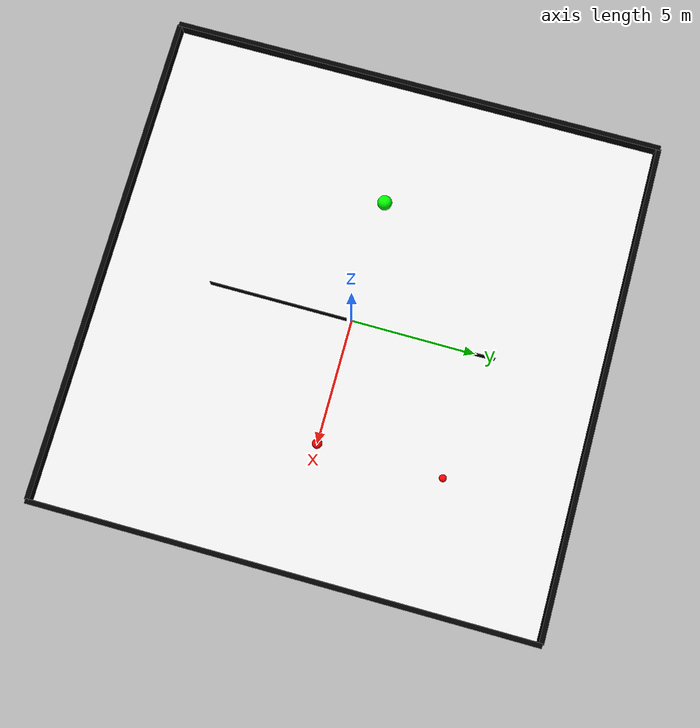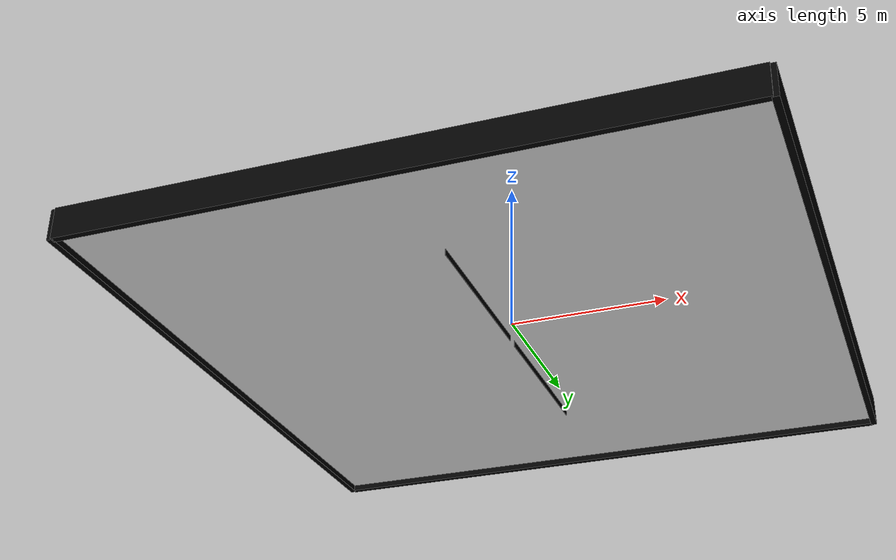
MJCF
<mujoco>
    <option gravity="0 0 0" timestep="0.01"/>
<default>
    <geom rgba="0 0 0 1"/>
</default>
    <worldbody>
 	<light diffuse=".2 .2 .2" pos="0 0 20" dir="0 0 -1" mode="track"/>
	<body>
	  <geom name='floor' pos='0 0 -0.4' size='10 10 .1' mass="10000" type='box' condim='3' rgba=".9 .9 .9 1"/>
		<camera name="center" mode="fixed" pos="0 0 30" />
	</body>
	<body>
	  <geom name='wall1' pos='-10.05 0 -0.2' size='.1 10.1 .5' mass="10000" type='box' condim='3'/>
	</body>
	<body>
	  <geom name='wall2' pos='10.05 0 -0.2' size='.1 10.1 .5' mass="10000" type='box' condim='3'/>
	</body>
	<body>
	  <geom name='wall3' pos='0 -10.05 -0.2' size='10 .1 .5' mass="10000" type='box' condim='3'/>
	</body>
	<body>
	  <geom name='wall4' pos='0 10.05 -0.2' size='10 .1 .5' mass="10000" type='box' condim='3'/>
	</body>
	<body>
	  <geom name='obstacle1' pos='0 3 -0.2' size='0.005 2.8 .5' mass="10000" type='box' condim='3'/>
	</body>
    <body>
	  <geom name='obstacle2' pos='0 -3 -0.2' size='0.005 2.8 .5' mass="10000" type='box' condim='3'/>
	</body>
 	<body name="prey" pos="-5 0 0">
            <joint axis="1 0 0" damping="0" name="prey0" pos="0 0 0" type="slide"/>
            <joint axis="0 1 0" damping="0" name="prey1" pos="0 0 0" type="slide"/>
            <geom type="sphere" size="0.3" mass="8" rgba="0 1 0 1"/>
		    <site name="prey" pos="0 0 0" type="sphere" size="0.01"/>
        </body>
	<body name="predator" pos="5 0 0">
            <joint axis="1 0 0" damping="0" name="predator0" pos="0 0 0" type="slide"/>
            <joint axis="0 1 0" damping="0" name="predator1" pos="0 0 0" type="slide"/>
            <geom type="sphere" size="0.2" mass="10" rgba="1 0 0 1"/>
    	    <site name="predator" pos="0 0 0" type="sphere" size="0.01"/>
	</body>

    <body name="predator4" pos="5 5 0">
            <joint axis="1 0 0" damping="0" name="predator40" pos="0 0 0" type="slide"/>
            <joint axis="0 1 0" damping="0" name="predator41" pos="0 0 0" type="slide"/>
            <geom type="sphere" size="0.15" mass="10" rgba="1 0 0 1"/>
            <site name="predator4" pos="0 0 0" type="sphere" size="0.01"/>
    </body>

    </worldbody>

    <actuator>
        <motor gear="10" joint="prey0"/>
        <motor gear="10" joint="prey1"/>
   	    <motor gear="10" joint="predator0"/>
        <motor gear="10" joint="predator1"/>
        <motor gear="10" joint="predator40"/>
        <motor gear="10" joint="predator41"/>
    </actuator>
</mujoco>
